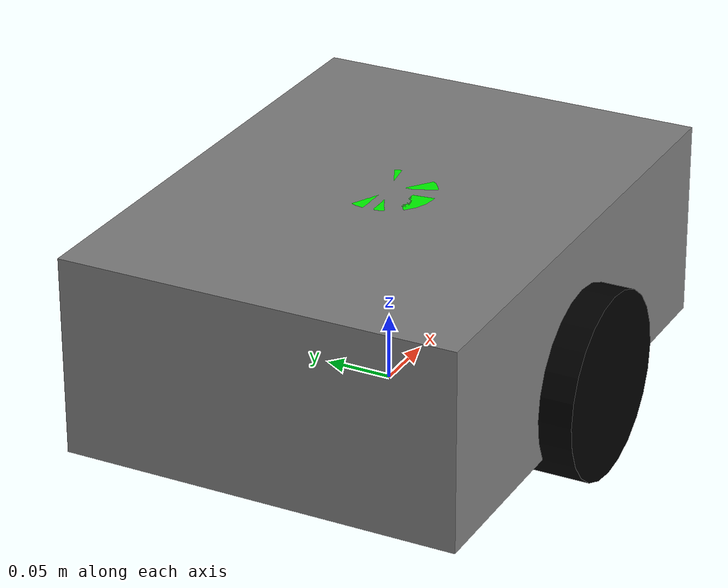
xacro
<?xml version="1.0"?>
<robot name="diff_drive" xmlns:xacro="http://ros.org/wiki/xacro">

  <!-- BASE LINK -->
  <link name="chassis">
    <visual>
      <geometry>
        <box size="0.4 0.3 0.15"/>
      </geometry>
      <origin xyz="0 0 0.075" rpy="0 0 0"/>
      <material name="gray">
        <color rgba="0.5 0.5 0.5 1"/>
      </material>
    </visual>
  </link>

  <!-- LEFT WHEEL -->
  <link name="left_wheel">
    <visual>
      <geometry>
        <cylinder radius="0.07" length="0.05"/>
      </geometry>
      <origin xyz="0 0.15 0.035" rpy="1.5708 0 0"/>
      <material name="black">
        <color rgba="0 0 0 1"/>
      </material>
    </visual>
  </link>

  <!-- RIGHT WHEEL -->
  <link name="right_wheel">
    <visual>
      <geometry>
        <cylinder radius="0.07" length="0.05"/>
      </geometry>
      <origin xyz="0 -0.15 0.035" rpy="1.5708 0 0"/>
      <material name="black">
        <color rgba="0 0 0 1"/>
      </material>
    </visual>
  </link>

  <!-- CASTER -->
  <link name="caster">
    <visual>
      <geometry>
        <sphere radius="0.04"/>
      </geometry>
      <origin xyz="-0.15 0 0.02"/>
      <material name="black">
        <color rgba="0.1 0.1 0.1 1"/>
      </material>
    </visual>
  </link>

  <!-- LIDAR -->
  <link name="lidar_link">
    <visual>
      <geometry>
        <cylinder radius="0.035" length="0.05"/>
      </geometry>
      <origin xyz="0 0 0.125"/>
      <material name="green">
        <color rgba="0 1 0 1"/>
      </material>
    </visual>
  </link>

  <!-- JOINTS -->
  <joint name="chassis_to_left_wheel" type="fixed">
    <parent link="chassis"/>
    <child link="left_wheel"/>
  </joint>

  <joint name="chassis_to_right_wheel" type="fixed">
    <parent link="chassis"/>
    <child link="right_wheel"/>
  </joint>

  <joint name="chassis_to_caster" type="fixed">
    <parent link="chassis"/>
    <child link="caster"/>
  </joint>

  <joint name="chassis_to_lidar" type="fixed">
    <parent link="chassis"/>
    <child link="lidar_link"/>
  </joint>

</robot>
